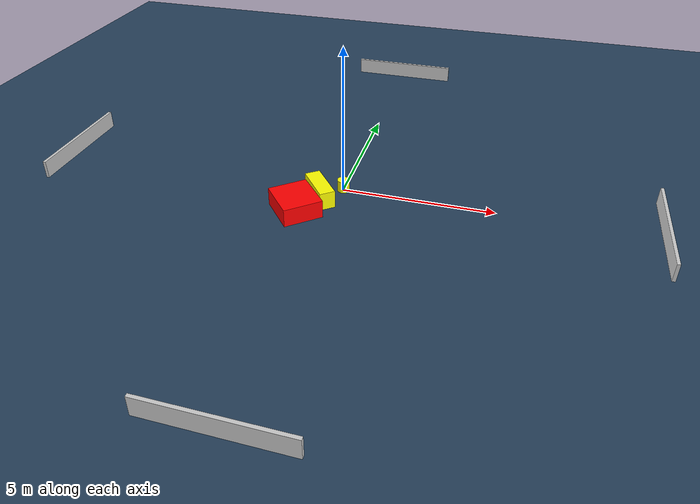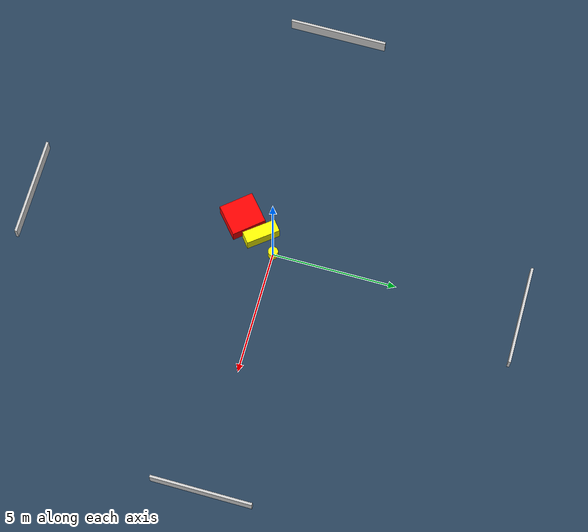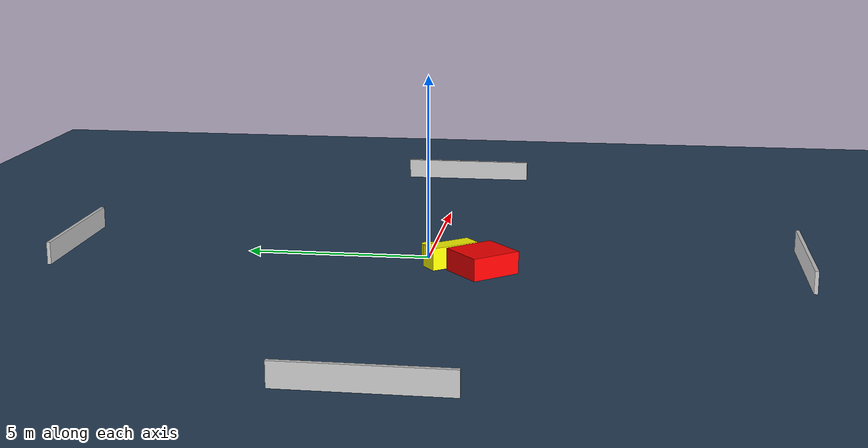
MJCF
<?xml version="1.0" ?>
<mujoco model="generated_environment">
  <option timestep="0.01" integrator="RK4" cone="elliptic"/>
  <default>
    <geom density="1"/>
  </default>
  <asset>
    <texture builtin="gradient" height="3072" name="skybox" rgb1="0.3 0.5 0.7" rgb2="0 0 0" type="skybox" width="512"/>
    <texture builtin="checker" height="300" name="groundplane" rgb1="0.2 0.3 0.4" rgb2="0.1 0.2 0.3" type="2d" width="300"/>
    <material name="groundplane" reflectance="0.2" texrepeat="5 5" texture="groundplane"/>
  </asset>
  <worldbody>
    <light dir="0 0 -1" directional="true" pos="0 0 1.5"/>
    <geom condim="3" friction="0.5 0.005 0.001" material="groundplane" name="floor" pos="0 0 0" size="0 0 0.05" type="plane"/>
    <body name="walls">
      <geom name="wall_1" condim="4" pos="-10.0 0.0 0.3" rgba="0.800000011920929 0.800000011920929 0.800000011920929 1.0" size="0.05 2.0 0.3" type="box"/>
      <geom name="wall_2" condim="4" pos="10.0 0.0 0.3" rgba="0.800000011920929 0.800000011920929 0.800000011920929 1.0" size="0.05 2.0 0.3" type="box"/>
      <geom name="wall_3" condim="4" pos="0.0 -10.0 0.3" rgba="0.800000011920929 0.800000011920929 0.800000011920929 1.0" size="2.0 0.05 0.3" type="box"/>
      <geom name="wall_4" condim="4" pos="0.0 10.0 0.3" rgba="0.800000011920929 0.800000011920929 0.800000011920929 1.0" size="2.0 0.05 0.3" type="box"/>
    </body>
    <body name="robot">
      <joint name="joint_x" type="slide" pos="0 0 0" axis="1 0 0"/>
      <joint name="joint_y" type="slide" pos="0 0 0" axis="0 1 0"/>
      <geom name="robot" type="cylinder" pos="0.0 0.0 0.2" size="0.2 0.2 0.0" mass="5.0" friction="1.0 0.005 0.0001" condim="4" rgba="1.0 1.0 0.0 1.0"/>
    </body>
    <body name="obstacle_1_movable">
      <geom name="obstacle_1_movable" condim="4" pos="-0.6111127891380027 -0.6651909485588346 0.3" euler="0 0 128.3782325251308" friction="0.0 0.005 0.001" rgba="1.0 1.0 0.0 1.0" size="0.689196752555596 0.2548126320859648 0.3" type="box" mass="0.1"/>
      <joint type="free"/>
    </body>
    <body name="obstacle_2_static">
      <geom name="obstacle_2_static" condim="4" pos="-1.1360230853815787 -1.5742990278268865 0.3" euler="0 0 40.45708381474452" friction="0.0 0.005 0.001" rgba="1.0 0.0 0.0 1.0" size="0.6448810345287337 0.7016800308051492 0.3" type="box"/>
    </body>
  </worldbody>
  <actuator>
    <motor name="actuator_x" joint="joint_x" gear="1" ctrlrange="-1 1"/>
    <motor name="actuator_y" joint="joint_y" gear="1" ctrlrange="-1 1"/>
  </actuator>
</mujoco>
